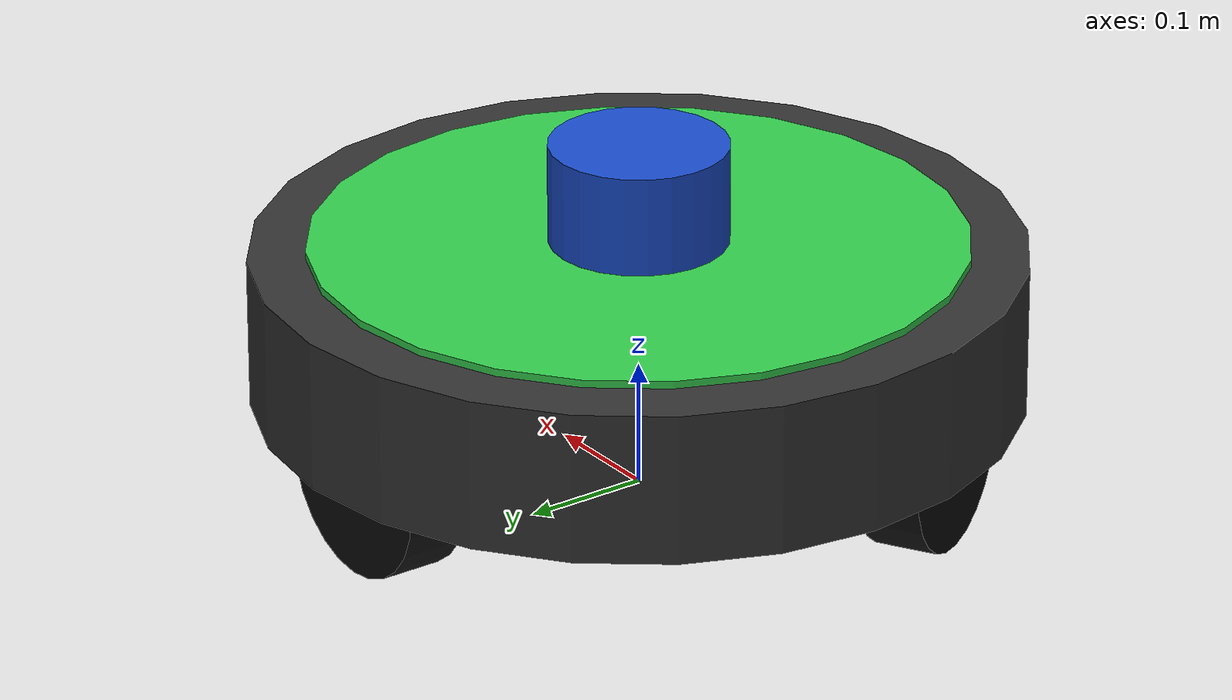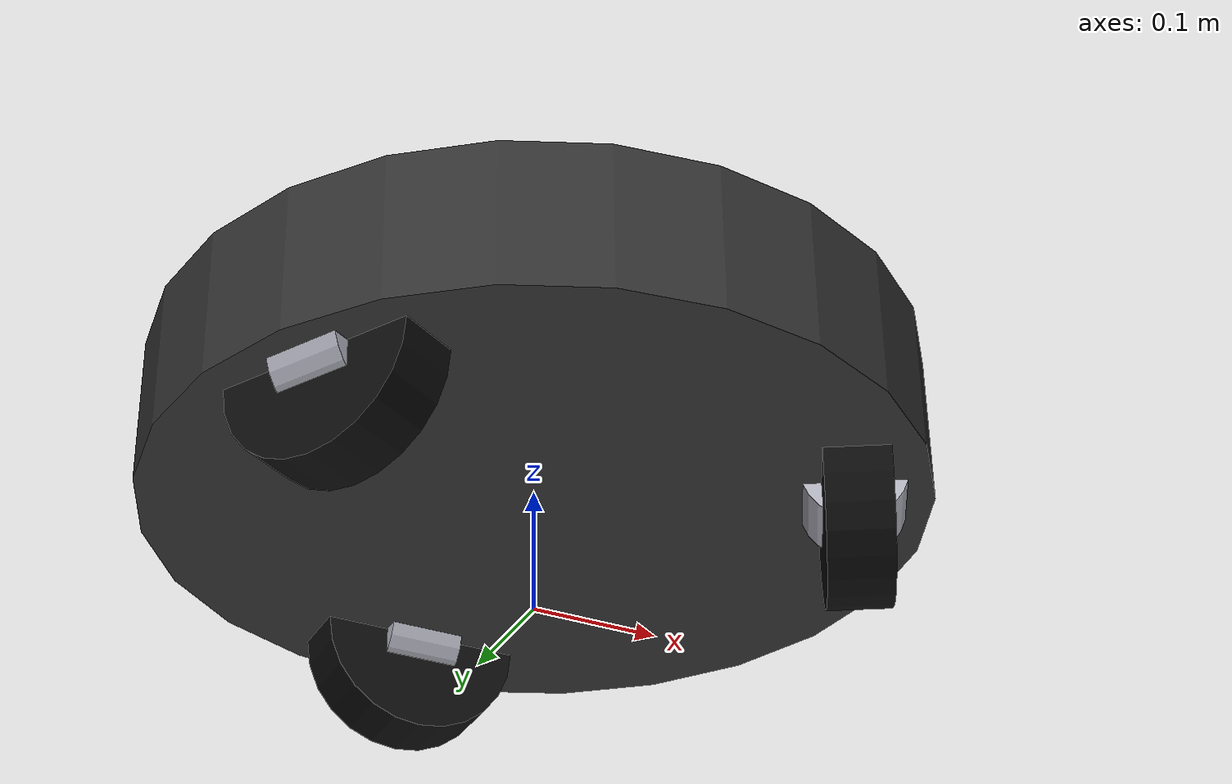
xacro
<?xml version="1.0"?>
<robot xmlns:xacro="http://www.ros.org/wiki/xacro" name="kiwi_robot">

  <xacro:property name="chassis_radius" value="0.30"/>
  <xacro:property name="chassis_height" value="0.12"/>
  <xacro:property name="chassis_mass" value="9.0"/>

  <xacro:property name="wheel_radius" value="0.08"/>
  <xacro:property name="wheel_width" value="0.05"/>
  <xacro:property name="wheel_mass" value="0.9"/>
  <xacro:property name="wheel_offset" value="0.24"/>

  <xacro:property name="roller_radius" value="0.016"/>
  <xacro:property name="roller_length" value="0.04"/>

  <xacro:property name="lidar_radius" value="0.07"/>
  <xacro:property name="lidar_height" value="0.08"/>
  <xacro:property name="lidar_mass" value="0.6"/>

  <!-- inertia macros -->
  <xacro:macro name="cylinder_inertia" params="m r h">
    <inertial>
      <mass value="${m}"/>
      <inertia ixx="${(m/12.0)*(3*r*r + h*h)}" ixy="0" ixz="0"
               iyy="${(m/12.0)*(3*r*r + h*h)}" iyz="0"
               izz="${(m/2.0)*r*r}"/>
    </inertial>
  </xacro:macro>

  <xacro:macro name="box_inertia" params="m x y z">
    <inertial>
      <mass value="${m}"/>
      <inertia ixx="${(m/12.0)*(y*y + z*z)}" ixy="0" ixz="0"
               iyy="${(m/12.0)*(x*x + z*z)}" iyz="0"
               izz="${(m/12.0)*(x*x + y*y)}"/>
    </inertial>
  </xacro:macro>

  <!--  materials  -->
  <material name="dark_gray">
    <color rgba="0.2 0.2 0.2 1.0"/>
  </material>
  <material name="silver">
    <color rgba="0.7 0.7 0.75 1.0"/>
  </material>
  <material name="black">
    <color rgba="0.05 0.05 0.05 1.0"/>
  </material>
  <material name="green_accent">
    <color rgba="0.2 0.8 0.3 1.0"/>
  </material>
  <material name="blue_sensor">
    <color rgba="0.1 0.3 0.8 1.0"/>
  </material>

  <!-- base footprint -->
  <link name="base_footprint"/>

  <joint name="base_footprint_joint" type="fixed">
    <parent link="base_footprint"/>
    <child link="base_link"/>
    <origin xyz="0 0 ${wheel_radius + chassis_height/2.0}" rpy="0 0 0"/>
  </joint>

  <!--  vhassis -->
  <link name="base_link">
    <xacro:cylinder_inertia m="${chassis_mass}" r="${chassis_radius}" h="${chassis_height}"/>
    <visual>
      <geometry>
        <cylinder radius="${chassis_radius}" length="${chassis_height}"/>
      </geometry>
      <material name="dark_gray"/>
    </visual>
    <collision>
      <geometry>
        <cylinder radius="${chassis_radius}" length="${chassis_height}"/>
      </geometry>
    </collision>
  </link>

  <!-- Top plate accent ring -->
  <link name="top_plate">
    <visual>
      <geometry>
        <cylinder radius="${chassis_radius * 0.85}" length="0.006"/>
      </geometry>
      <material name="green_accent"/>
    </visual>
  </link>
  <joint name="top_plate_joint" type="fixed">
    <parent link="base_link"/>
    <child link="top_plate"/>
    <origin xyz="0 0 ${chassis_height/2.0 + 0.004}" rpy="0 0 0"/>
  </joint>

  <!-- wheel macro -->
  <xacro:macro name="kiwi_wheel" params="name angle_deg">
    <!-- Compute angle in radians -->
    <xacro:property name="angle_rad" value="${radians(angle_deg)}"/>

    <!-- Wheel hub (motor housing) -->
    <link name="${name}_hub">
      <visual>
        <origin xyz="0 0 0" rpy="0 0 0"/>
        <geometry>
          <cylinder radius="0.04" length="0.06"/>
        </geometry>
        <material name="silver"/>
      </visual>
    </link>
    <joint name="${name}_hub_joint" type="fixed">
      <parent link="base_link"/>
      <child link="${name}_hub"/>
      <origin xyz="${wheel_offset * cos(angle_rad)} ${wheel_offset * sin(angle_rad)} ${-chassis_height/2.0 + 0.01}"
              rpy="${pi/2.0} 0 ${angle_rad}"/>
    </joint>

    <!-- Wheel link -->
    <link name="${name}_wheel">
      <xacro:cylinder_inertia m="${wheel_mass}" r="${wheel_radius}" h="${wheel_width}"/>
      <visual>
        <geometry>
          <cylinder radius="${wheel_radius}" length="${wheel_width}"/>
        </geometry>
        <material name="black"/>
      </visual>
      <collision>
        <geometry>
          <cylinder radius="${wheel_radius}" length="${wheel_width}"/>
        </geometry>
      </collision>
    </link>
    <joint name="${name}_wheel_joint" type="continuous">
      <parent link="base_link"/>
      <child link="${name}_wheel"/>

      <origin xyz="${wheel_offset * cos(angle_rad)} ${wheel_offset * sin(angle_rad)} ${-chassis_height/2.0}"
              rpy="${pi/2.0} 0 ${angle_rad + pi/2.0}"/>
      <axis xyz="0 0 1"/>
      <dynamics damping="0.01" friction="0.005"/>
    </joint>
  </xacro:macro>

  <!-- instantiate 3 wheels at 120 degree intervals -->
  <xacro:kiwi_wheel name="front"      angle_deg="90"/>
  <xacro:kiwi_wheel name="rear_left"  angle_deg="210"/>
  <xacro:kiwi_wheel name="rear_right" angle_deg="-30"/>

  <!-- lidar -->
  <link name="lidar_link">
    <xacro:cylinder_inertia m="${lidar_mass}" r="${lidar_radius}" h="${lidar_height}"/>
    <visual>
      <geometry>
        <cylinder radius="${lidar_radius}" length="${lidar_height}"/>
      </geometry>
      <material name="blue_sensor"/>
    </visual>
    <collision>
      <geometry>
        <cylinder radius="${lidar_radius}" length="${lidar_height}"/>
      </geometry>
    </collision>
  </link>
  <joint name="lidar_joint" type="fixed">
    <parent link="base_link"/>
    <child link="lidar_link"/>
    <origin xyz="0 0 ${chassis_height/2.0 + 0.006 + lidar_height/2.0}" rpy="0 0 0"/>
  </joint>

  <!-- gazebo material-->
  <gazebo reference="base_link">
    <material>Gazebo/DarkGrey</material>
  </gazebo>
  <gazebo reference="top_plate">
    <material>Gazebo/Green</material>
  </gazebo>
  <gazebo reference="front_hub">
    <material>Gazebo/Grey</material>
  </gazebo>
  <gazebo reference="rear_left_hub">
    <material>Gazebo/Grey</material>
  </gazebo>
  <gazebo reference="rear_right_hub">
    <material>Gazebo/Grey</material>
  </gazebo>

  <gazebo reference="front_wheel">
    <material>Gazebo/Black</material>
    <mu1>0.02</mu1>
    <mu2>1.0</mu2>
    <fdir1>0 0 1</fdir1>
  </gazebo>
  <gazebo reference="rear_left_wheel">
    <material>Gazebo/Black</material>
    <!-- see front_wheel comment: anisotropic friction emulates the omni roller -->
    <mu1>0.02</mu1>
    <mu2>1.0</mu2>
    <fdir1>0 0 1</fdir1>
  </gazebo>
  <gazebo reference="rear_right_wheel">
    <material>Gazebo/Black</material>
    <!-- see front_wheel comment: anisotropic friction emulates the omni roller -->
    <mu1>0.02</mu1>
    <mu2>1.0</mu2>
    <fdir1>0 0 1</fdir1>
  </gazebo>
  <gazebo reference="lidar_link">
    <material>Gazebo/Blue</material>
  </gazebo>

  <!-- plugins -->
  <gazebo>
    <plugin filename="gz-sim-joint-state-publisher-system"
            name="gz::sim::systems::JointStatePublisher">
      <joint_name>front_wheel_joint</joint_name>
      <joint_name>rear_left_wheel_joint</joint_name>
      <joint_name>rear_right_wheel_joint</joint_name>
    </plugin>
  </gazebo>

  <gazebo>
    <plugin filename="gz-sim-odometry-publisher-system"
            name="gz::sim::systems::OdometryPublisher">
      <odom_frame>odom</odom_frame>
      <robot_base_frame>base_footprint</robot_base_frame>
      <odom_topic>model/kiwi_robot/odometry</odom_topic>
      <odom_publish_frequency>20</odom_publish_frequency>
      <tf_topic>tf</tf_topic>
      <dimensions>2</dimensions>
    </plugin>
  </gazebo>

  <gazebo>
    <plugin filename="gz-sim-joint-controller-system"
            name="gz::sim::systems::JointController">
      <joint_name>front_wheel_joint</joint_name>
      <topic>/model/kiwi_robot/joint/front_wheel_joint/cmd_vel</topic>
      <use_force_commands>false</use_force_commands>
      <p_gain>2.0</p_gain>
    </plugin>
  </gazebo>
  <gazebo>
    <plugin filename="gz-sim-joint-controller-system"
            name="gz::sim::systems::JointController">
      <joint_name>rear_left_wheel_joint</joint_name>
      <topic>/model/kiwi_robot/joint/rear_left_wheel_joint/cmd_vel</topic>
      <use_force_commands>false</use_force_commands>
      <p_gain>2.0</p_gain>
    </plugin>
  </gazebo>
  <gazebo>
    <plugin filename="gz-sim-joint-controller-system"
            name="gz::sim::systems::JointController">
      <joint_name>rear_right_wheel_joint</joint_name>
      <topic>/model/kiwi_robot/joint/rear_right_wheel_joint/cmd_vel</topic>
      <use_force_commands>false</use_force_commands>
      <p_gain>2.0</p_gain>
    </plugin>
  </gazebo>

  <!-- Lidar sensor -->
  <gazebo reference="lidar_link">
    <sensor name="lidar" type="gpu_lidar">
      <always_on>true</always_on>
      <update_rate>10</update_rate>
      <topic>scan</topic>
      <gz_frame_id>lidar_link</gz_frame_id>
      <lidar>
        <scan>
          <horizontal>
            <samples>360</samples>
            <resolution>1</resolution>
            <min_angle>-3.14159</min_angle>
            <max_angle>3.14159</max_angle>
          </horizontal>
        </scan>
        <range>
          <min>0.12</min>
          <max>10.0</max>
          <resolution>0.01</resolution>
        </range>
      </lidar>
    </sensor>
  </gazebo>

</robot>
